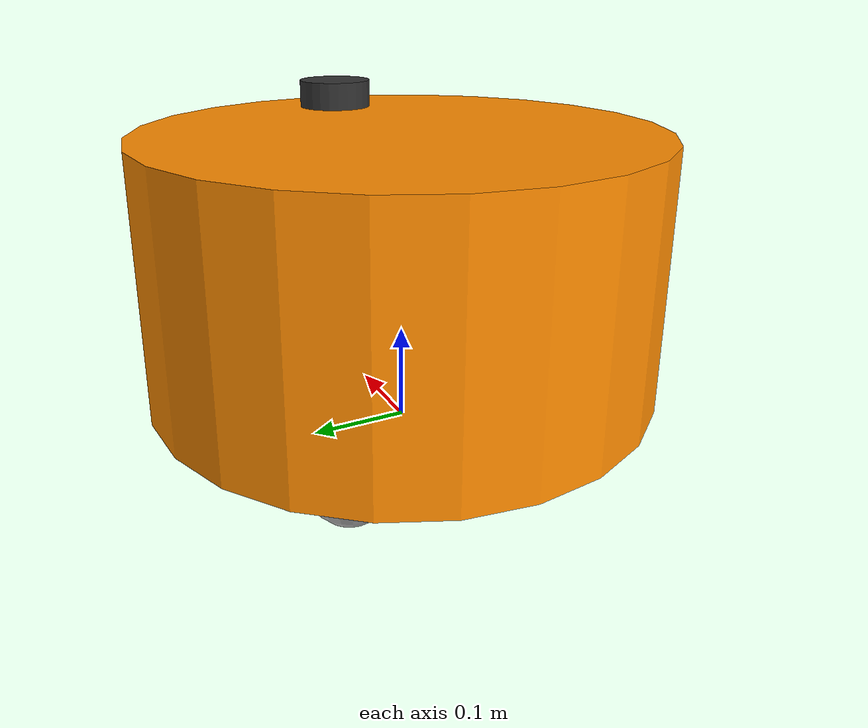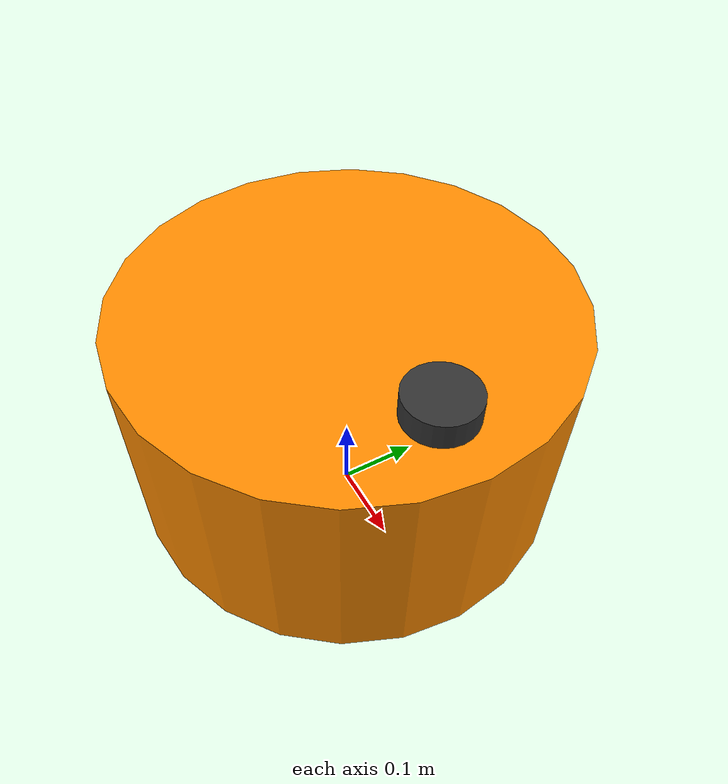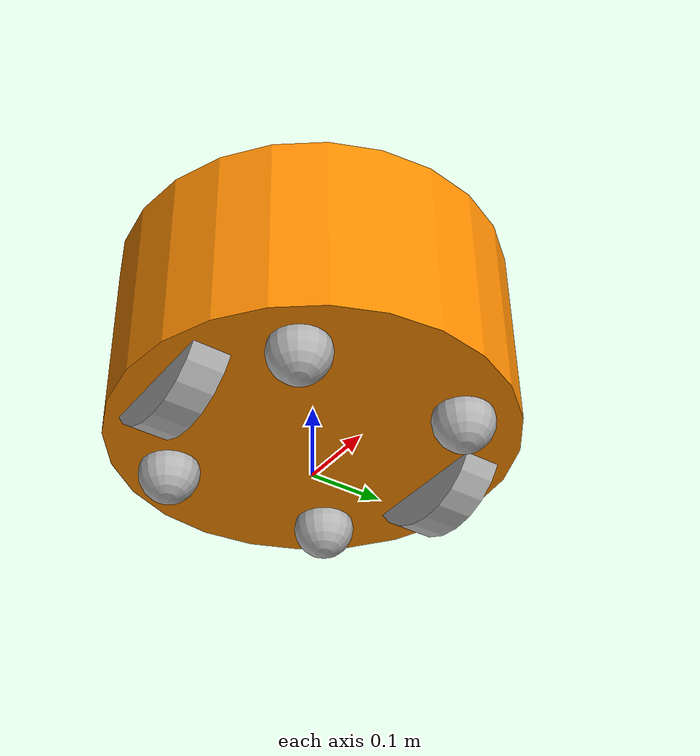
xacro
<!-- 组合机器人各部件的xacro文件 -->
<robot name="myRobot" xmlns:xacro="http://wiki.ros.org/xacro">

    <xacro:include filename="inertials.xacro" />
    <xacro:include filename="materials.xacro" />
    <xacro:include filename="robot_base.xacro" />
    <xacro:include filename="robot_laser.xacro" />

    <!-- 运动控制 -->
    <xacro:include filename="gazebo/gazebo_control.xacro" />
    <!-- 激光雷达 -->
    <xacro:include filename="gazebo/laser.xacro" />

</robot>

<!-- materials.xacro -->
<robot>

  <!-- Put all the color definitions in a separate file -->

  <material name="Black">
    <color rgba="0.2 0.2 0.2 1.0"/>
  </material>

   <material name="TransparentBlack">
    <color rgba="0.2 0.2 0.2 0.8"/>
  </material>

  <material name="Orange">
    <color rgba="1.0  0.55 0.0 1.0"/>
  </material>

  <material name="Gray">
    <color rgba="0.7 0.7 0.7 1.0"/>
  </material>

  <material name="DarkGray">
    <color rgba="0.3 0.3 0.3 1.0"/>
  </material>

  <material name="Red">
    <color rgba="0.8 0.0 0.0 1.0"/>
  </material>

  <material name="White">
    <color rgba="1.0 1.0 1.0 1.0"/>
  </material>

  <material name="OffWhite">
    <color rgba="0.8 0.8 0.8 1.0"/>
  </material>

  <material name="Blue">
    <color rgba="0.0 0.0 0.8 1.0"/>
  </material>

  <material name="Green">
    <color rgba="0.0 0.8 0.0 1.0"/>
  </material>

  <material name="TransparentGreen">
    <color rgba="0.0 0.8 0.0 0.5"/>
  </material>

</robot>

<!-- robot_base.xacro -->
<robot name="robot_base" xmlns:xacro="http://www.ros.org/wiki/xacro">

    <xacro:property name="PI" value="3.1415926"/>

    <!-- 1. base_footprint -->
    <xacro:property name="footprint_radius" value="0.001" />
    <link name="base_footprint">
        <visual>
            <geometry>
                <sphere radius="${footprint_radius}"/>
            </geometry>
        </visual>
    </link>

    <!-- 2. 底盘base_link -->
    <xacro:property name="base_radius" value="0.2625" />
    <xacro:property name="base_height" value="0.2625" />
    <xacro:property name="base_mass" value="40" />
    <xacro:property name="earth_space" value="0.05" />
    <xacro:property name="base_joint_z" value="${base_height/2 + earth_space}" />
    <link name="base_link">
        <visual>
            <geometry>
                <cylinder radius="${base_radius}" length="${base_height}"/>
            </geometry>
            <material name="Orange"/>
        </visual>
        <!-- 碰撞属性（gazebo仿真必需项） -->
        <collision>
            <geometry>
                <cylinder radius="${base_radius}" length="${base_height}"/>
            </geometry>
        </collision>
        <!-- 调用惯性矩阵函数 -->
        <xacro:cylinder_inertial_matrix m="${base_mass}" r="${base_radius}" h="${base_height}" />
    </link>
    <!-- 设置base_footprint和base_link之间的joint -->
    <joint name="link2footprint" type="fixed">
        <parent link="base_footprint"/>
        <child link="base_link"/>
        <origin xyz="0 0 ${base_joint_z}" rpy="0 0 0"/>
    </joint>
    <!-- gazebo的颜色属性设置 -->
    <gazebo reference="base_link">
        <material>Gazebo/Orange</material>
    </gazebo>

    <!-- 3. 两个驱动轮 -->
    <xacro:property name="wheel_radius" value="0.108" />
    <xacro:property name="wheel_width" value="0.05" />
    <xacro:property name="wheel_mass" value="0.7" />
    <xacro:property name="wheel_joint_y" value="0.2" />
    <xacro:property name="wheel_joint_z" value="${-1 * (base_height/2 + earth_space - wheel_radius)}" />
    <xacro:macro name="wheel" params="wheel_name flag">
        <link name="${wheel_name}_wheel">
            <visual>
                <geometry>
                    <cylinder radius="${wheel_radius}" length="${wheel_width}"/>
                </geometry>
                <origin xyz="0.0 0.0 0.0" rpy="${PI / 2} 0.0 0.0"/>
                <material name="Gray" />
            </visual>
            <collision>
                <geometry>
                    <cylinder radius="${wheel_radius}" length="${wheel_width}"/>
                </geometry>
                <origin xyz="0.0 0.0 0.0" rpy="${PI / 2} 0.0 0.0"/>
            </collision>
            <xacro:cylinder_inertial_matrix m="${wheel_mass}" r="${wheel_radius}" h="${wheel_width}" />
        </link>
        <!-- wheel和base_link之间的joint -->
        <joint name="${wheel_name}2link" type="continuous">
            <parent link="base_link"/>
            <child link="${wheel_name}_wheel"/>
            <origin xyz="0.0 ${wheel_joint_y * flag} ${wheel_joint_z}" rpy="0.0 0.0 0.0"/>
            <axis xyz="0.0 1.0 0.0"/>
        </joint>
        <gazebo reference="${wheel_name}_wheel">
            <material>Gazebo/Gray</material>
        </gazebo>
        <!-- 为joint添加传动装置 -->
        <transmission name="${wheel_name}_wheel_joint_trans">
            <type>transmission_interface/SimpleTransmission</type>
            <joint name="${wheel_name}2link">
                <hardwareInterface>hardware_interface/VelocityJointInterface</hardwareInterface>
            </joint>
            <actuator name="${wheel_name}_wheel_joint_motor">
                <hardwareInterface>hardware_interface/VelocityJointInterface</hardwareInterface>
                <mechanicalReduction>1</mechanicalReduction>
            </actuator>
        </transmission>
    </xacro:macro>
    <!-- 调用驱动的宏 -->
    <xacro:wheel wheel_name="left" flag="1" />
    <xacro:wheel wheel_name="right" flag="-1" />

    <!-- 4. 四个支撑万向轮 -->
    <xacro:property name="caster_radius" value="0.04" />
    <xacro:property name="caster_mass" value="0.1" />
    <xacro:property name="caster_joint_x" value="0.15" />
    <xacro:property name="caster_joint_y" value="0.12" />
    <xacro:property name="caster_joint_z" value="${-1 * (base_height/2 + earth_space - caster_radius)}" />
    <xacro:macro name="caster" params="caster_name flag_x flag_y">
        <link name="${caster_name}_wheel">
            <visual>
                <geometry>
                    <sphere radius="${caster_radius}" />
                </geometry>
                <origin xyz="0.0 0.0 0.0" rpy="0.0 0.0 0.0"/>
                <material name="Gray" />
            </visual>
            <collision>
                <geometry>
                    <sphere radius="${caster_radius}" />
                </geometry>
                <origin xyz="0.0 0.0 0.0" rpy="0.0 0.0 0.0"/>
            </collision>
            <xacro:sphere_inertial_matrix m="${caster_mass}" r="${caster_radius}" />
        </link>
        <!-- caster和base_link之间的joint -->
        <joint name="${caster_name}2link" type="continuous">
            <parent link="base_link"/>
            <child link="${caster_name}_wheel"/>
            <origin xyz="${caster_joint_x * flag_x} ${caster_joint_y * flag_y} ${caster_joint_z}" rpy="0.0 0.0 0.0"/>
            <axis xyz="1.0 1.0 1.0"/>
        </joint>
        <gazebo reference="${caster_name}_wheel">
            <material>Gazebo/Gray</material>
        </gazebo>
    </xacro:macro>
    <!-- 调用万向轮的宏 -->
    <xacro:caster caster_name="front_l" flag_x="1" flag_y="1" />
    <xacro:caster caster_name="front_r" flag_x="1" flag_y="-1" />
    <xacro:caster caster_name="back_l" flag_x="-1" flag_y="1" />
    <xacro:caster caster_name="back_r" flag_x="-1" flag_y="-1" />

</robot>

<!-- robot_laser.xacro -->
<!-- 激光雷达 -->
<robot name="robot_laser" xmlns:xacro="http://www.ros.org/wiki/xacro">

    <xacro:property name="laser_radius" value="0.04" />
    <xacro:property name="laser_height" value="0.03" />
    <xacro:property name="laser_mass" value="0.15" />
    <xacro:property name="laser_joint_x" value="0.18" />
    <xacro:property name="laser_joint_y" value="0.0" />
    <xacro:property name="laser_joint_z" value="${base_height/2 + laser_height/2}" />

    <link name="laser">
        <visual>
            <geometry>
                <cylinder radius="${laser_radius}" length="${laser_height}"/>
            </geometry>
            <material name="Black" />
        </visual>
        <collision>
            <geometry>
                <cylinder radius="${laser_radius}" length="${laser_height}"/>
            </geometry>
        </collision>
        <xacro:cylinder_inertial_matrix m="${laser_mass}" r="${laser_radius}" h="${laser_height}"/>
    </link>
    <gazebo reference="laser">
        <material>Gazebo/Black</material>
    </gazebo>
    <!-- 雷达和base_link之间的joint -->
    <joint name="laser2link" type="fixed">
        <parent link="base_link"/>
        <child link="laser"/>
        <origin xyz="${laser_joint_x} ${laser_joint_y} ${laser_joint_z}" rpy="0.0 0.0 0.0"/>
    </joint>

</robot>
